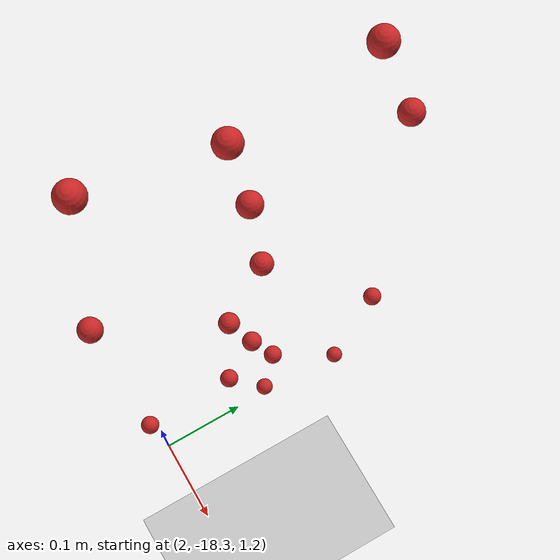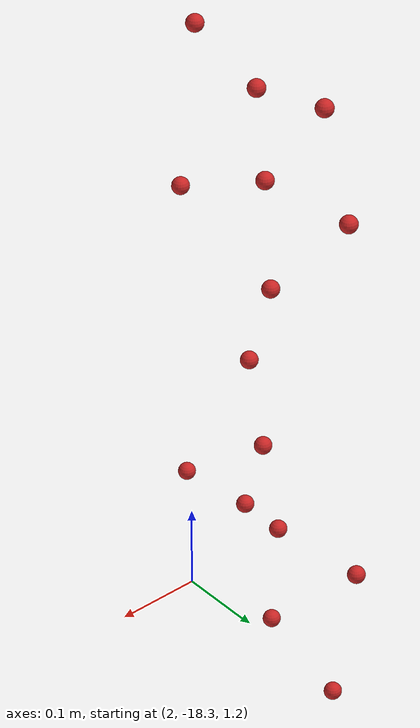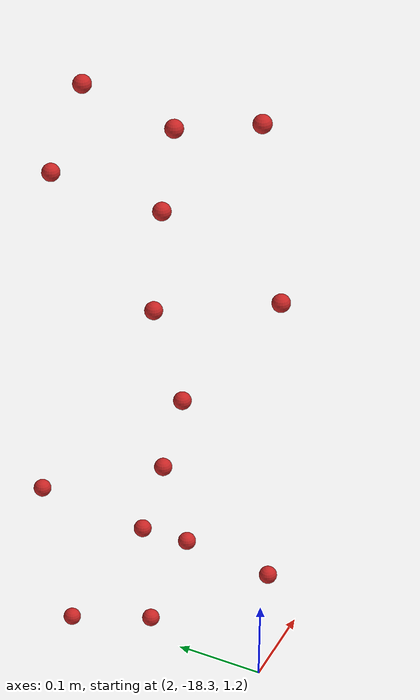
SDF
<sdf version="1.4">
 <world name="default">
  <model name="ground_plane">
   <static>1</static>
   <link name="link">
    <collision name="collision">
     <geometry><plane><normal>0 0 1</normal><size>100 100</size></plane></geometry>
     <surface><friction><ode><mu>100</mu><mu2>50</mu2></ode></friction></surface>
    </collision>
    <visual name="visual">
     <cast_shadows>0</cast_shadows>
     <geometry><plane><normal>0 0 1</normal><size>100 100</size></plane></geometry>
     <material>
      <script><uri>file://media/materials/scripts/gazebo.material</uri><name>Gazebo/Grey</name></script>
     </material>
    </visual>
    <velocity_decay><linear>0</linear><angular>0</angular></velocity_decay>
   </link>
  </model>
  <model name="apple845">
   <link name="my_apple">
    <inertial>
     <pose>2 0 0 0 -0 0</pose>
     <mass>1</mass>
     <inertia><ixx>1</ixx><ixy>0</ixy><ixz>0</ixz><iyy>1</iyy><iyz>0</iyz><izz>1</izz></inertia>
    </inertial>
    <collision name="my_apple_collision">
     <pose>2 0 1 0 -0 0</pose>
     <geometry><sphere><radius>0.01</radius></sphere></geometry>
    </collision>
    <visual name="my_apple_visual">
     <pose>2 0 1 0 -0 0</pose>
     <geometry><sphere><radius>0.01</radius></sphere></geometry>
     <material><script><name>Gazebo/Red</name><uri>__default__</uri></script></material>
    </visual>
    <gravity>0</gravity>
    <velocity_decay><linear>0</linear><angular>0</angular></velocity_decay>
   </link>
   <pose>0 -18.3145 0.728565 0 -0 0</pose>
   <static>0</static>
  </model>
  <model name="apple846">
   <link name="my_apple">
    <inertial>
     <pose>2 0 0 0 -0 0</pose>
     <mass>1</mass>
     <inertia><ixx>1</ixx><ixy>0</ixy><ixz>0</ixz><iyy>1</iyy><iyz>0</iyz><izz>1</izz></inertia>
    </inertial>
    <collision name="my_apple_collision">
     <pose>2 0 1 0 -0 0</pose>
     <geometry><sphere><radius>0.01</radius></sphere></geometry>
    </collision>
    <visual name="my_apple_visual">
     <pose>2 0 1 0 -0 0</pose>
     <geometry><sphere><radius>0.01</radius></sphere></geometry>
     <material><script><name>Gazebo/Red</name><uri>__default__</uri></script></material>
    </visual>
    <gravity>0</gravity>
    <velocity_decay><linear>0</linear><angular>0</angular></velocity_decay>
   </link>
   <pose>0 -18.3081 0.352792 0 -0 0</pose>
   <static>0</static>
  </model>
  <model name="apple847">
   <link name="my_apple">
    <inertial>
     <pose>2 0 0 0 -0 0</pose>
     <mass>1</mass>
     <inertia><ixx>1</ixx><ixy>0</ixy><ixz>0</ixz><iyy>1</iyy><iyz>0</iyz><izz>1</izz></inertia>
    </inertial>
    <collision name="my_apple_collision">
     <pose>2 0 1 0 -0 0</pose>
     <geometry><sphere><radius>0.01</radius></sphere></geometry>
    </collision>
    <visual name="my_apple_visual">
     <pose>2 0 1 0 -0 0</pose>
     <geometry><sphere><radius>0.01</radius></sphere></geometry>
     <material><script><name>Gazebo/Red</name><uri>__default__</uri></script></material>
    </visual>
    <gravity>0</gravity>
    <velocity_decay><linear>0</linear><angular>0</angular></velocity_decay>
   </link>
   <pose>0 -18.202 0.561909 0 -0 0</pose>
   <static>0</static>
  </model>
  <model name="apple848">
   <link name="my_apple">
    <inertial>
     <pose>2 0 0 0 -0 0</pose>
     <mass>1</mass>
     <inertia><ixx>1</ixx><ixy>0</ixy><ixz>0</ixz><iyy>1</iyy><iyz>0</iyz><izz>1</izz></inertia>
    </inertial>
    <collision name="my_apple_collision">
     <pose>2 0 1 0 -0 0</pose>
     <geometry><sphere><radius>0.01</radius></sphere></geometry>
    </collision>
    <visual name="my_apple_visual">
     <pose>2 0 1 0 -0 0</pose>
     <geometry><sphere><radius>0.01</radius></sphere></geometry>
     <material><script><name>Gazebo/Red</name><uri>__default__</uri></script></material>
    </visual>
    <gravity>0</gravity>
    <velocity_decay><linear>0</linear><angular>0</angular></velocity_decay>
   </link>
   <pose>0 -18.1628 0.230719 0 -0 0</pose>
   <static>0</static>
  </model>
  <model name="apple849">
   <link name="my_apple">
    <inertial>
     <pose>2 0 0 0 -0 0</pose>
     <mass>1</mass>
     <inertia><ixx>1</ixx><ixy>0</ixy><ixz>0</ixz><iyy>1</iyy><iyz>0</iyz><izz>1</izz></inertia>
    </inertial>
    <collision name="my_apple_collision">
     <pose>2 0 1 0 -0 0</pose>
     <geometry><sphere><radius>0.01</radius></sphere></geometry>
    </collision>
    <visual name="my_apple_visual">
     <pose>2 0 1 0 -0 0</pose>
     <geometry><sphere><radius>0.01</radius></sphere></geometry>
     <material><script><name>Gazebo/Red</name><uri>__default__</uri></script></material>
    </visual>
    <gravity>0</gravity>
    <velocity_decay><linear>0</linear><angular>0</angular></velocity_decay>
   </link>
   <pose>0 -18.1788 0.461066 0 -0 0</pose>
   <static>0</static>
  </model>
  <model name="apple851">
   <link name="my_apple">
    <inertial>
     <pose>2 0 0 0 -0 0</pose>
     <mass>1</mass>
     <inertia><ixx>1</ixx><ixy>0</ixy><ixz>0</ixz><iyy>1</iyy><iyz>0</iyz><izz>1</izz></inertia>
    </inertial>
    <collision name="my_apple_collision">
     <pose>2 0 1 0 -0 0</pose>
     <geometry><sphere><radius>0.01</radius></sphere></geometry>
    </collision>
    <visual name="my_apple_visual">
     <pose>2 0 1 0 -0 0</pose>
     <geometry><sphere><radius>0.01</radius></sphere></geometry>
     <material><script><name>Gazebo/Red</name><uri>__default__</uri></script></material>
    </visual>
    <gravity>0</gravity>
    <velocity_decay><linear>0</linear><angular>0</angular></velocity_decay>
   </link>
   <pose>0 -18.0876 0.93166 0 -0 0</pose>
   <static>0</static>
  </model>
  <model name="apple856">
   <link name="my_apple">
    <inertial>
     <pose>2 0 0 0 -0 0</pose>
     <mass>1</mass>
     <inertia><ixx>1</ixx><ixy>0</ixy><ixz>0</ixz><iyy>1</iyy><iyz>0</iyz><izz>1</izz></inertia>
    </inertial>
    <collision name="my_apple_collision">
     <pose>2 0 1 0 -0 0</pose>
     <geometry><sphere><radius>0.01</radius></sphere></geometry>
    </collision>
    <visual name="my_apple_visual">
     <pose>2 0 1 0 -0 0</pose>
     <geometry><sphere><radius>0.01</radius></sphere></geometry>
     <material><script><name>Gazebo/Red</name><uri>__default__</uri></script></material>
    </visual>
    <gravity>0</gravity>
    <velocity_decay><linear>0</linear><angular>0</angular></velocity_decay>
   </link>
   <pose>0 -18.1777 0.801809 0 -0 0</pose>
   <static>0</static>
  </model>
  <model name="apple861">
   <link name="my_apple">
    <inertial>
     <pose>2 0 0 0 -0 0</pose>
     <mass>1</mass>
     <inertia><ixx>1</ixx><ixy>0</ixy><ixz>0</ixz><iyy>1</iyy><iyz>0</iyz><izz>1</izz></inertia>
    </inertial>
    <collision name="my_apple_collision">
     <pose>2 0 1 0 -0 0</pose>
     <geometry><sphere><radius>0.01</radius></sphere></geometry>
    </collision>
    <visual name="my_apple_visual">
     <pose>2 0 1 0 -0 0</pose>
     <geometry><sphere><radius>0.01</radius></sphere></geometry>
     <material><script><name>Gazebo/Red</name><uri>__default__</uri></script></material>
    </visual>
    <gravity>0</gravity>
    <velocity_decay><linear>0</linear><angular>0</angular></velocity_decay>
   </link>
   <pose>0 -18.2889 0.940255 0 -0 0</pose>
   <static>0</static>
  </model>
  <model name="apple862">
   <link name="my_apple">
    <inertial>
     <pose>2 0 0 0 -0 0</pose>
     <mass>1</mass>
     <inertia><ixx>1</ixx><ixy>0</ixy><ixz>0</ixz><iyy>1</iyy><iyz>0</iyz><izz>1</izz></inertia>
    </inertial>
    <collision name="my_apple_collision">
     <pose>2 0 1 0 -0 0</pose>
     <geometry><sphere><radius>0.01</radius></sphere></geometry>
    </collision>
    <visual name="my_apple_visual">
     <pose>2 0 1 0 -0 0</pose>
     <geometry><sphere><radius>0.01</radius></sphere></geometry>
     <material><script><name>Gazebo/Red</name><uri>__default__</uri></script></material>
    </visual>
    <gravity>0</gravity>
    <velocity_decay><linear>0</linear><angular>0</angular></velocity_decay>
   </link>
   <pose>0 -18.153 0.362346 0 -0 0</pose>
   <static>0</static>
  </model>
  <model name="apple863">
   <link name="my_apple">
    <inertial>
     <pose>2 0 0 0 -0 0</pose>
     <mass>1</mass>
     <inertia><ixx>1</ixx><ixy>0</ixy><ixz>0</ixz><iyy>1</iyy><iyz>0</iyz><izz>1</izz></inertia>
    </inertial>
    <collision name="my_apple_collision">
     <pose>2 0 1 0 -0 0</pose>
     <geometry><sphere><radius>0.01</radius></sphere></geometry>
    </collision>
    <visual name="my_apple_visual">
     <pose>2 0 1 0 -0 0</pose>
     <geometry><sphere><radius>0.01</radius></sphere></geometry>
     <material><script><name>Gazebo/Red</name><uri>__default__</uri></script></material>
    </visual>
    <gravity>0</gravity>
    <velocity_decay><linear>0</linear><angular>0</angular></velocity_decay>
   </link>
   <pose>0 -18.2083 0.364469 0 -0 0</pose>
   <static>0</static>
  </model>
  <model name="apple865">
   <link name="my_apple">
    <inertial>
     <pose>2 0 0 0 -0 0</pose>
     <mass>1</mass>
     <inertia><ixx>1</ixx><ixy>0</ixy><ixz>0</ixz><iyy>1</iyy><iyz>0</iyz><izz>1</izz></inertia>
    </inertial>
    <collision name="my_apple_collision">
     <pose>2 0 1 0 -0 0</pose>
     <geometry><sphere><radius>0.01</radius></sphere></geometry>
    </collision>
    <visual name="my_apple_visual">
     <pose>2 0 1 0 -0 0</pose>
     <geometry><sphere><radius>0.01</radius></sphere></geometry>
     <material><script><name>Gazebo/Red</name><uri>__default__</uri></script></material>
    </visual>
    <gravity>0</gravity>
    <velocity_decay><linear>0</linear><angular>0</angular></velocity_decay>
   </link>
   <pose>0 -18.1916 0.907006 0 -0 0</pose>
   <static>0</static>
  </model>
  <model name="apple866">
   <link name="my_apple">
    <inertial>
     <pose>2 0 0 0 -0 0</pose>
     <mass>1</mass>
     <inertia><ixx>1</ixx><ixy>0</ixy><ixz>0</ixz><iyy>1</iyy><iyz>0</iyz><izz>1</izz></inertia>
    </inertial>
    <collision name="my_apple_collision">
     <pose>2 0 1 0 -0 0</pose>
     <geometry><sphere><radius>0.01</radius></sphere></geometry>
    </collision>
    <visual name="my_apple_visual">
     <pose>2 0 1 0 -0 0</pose>
     <geometry><sphere><radius>0.01</radius></sphere></geometry>
     <material><script><name>Gazebo/Red</name><uri>__default__</uri></script></material>
    </visual>
    <gravity>0</gravity>
    <velocity_decay><linear>0</linear><angular>0</angular></velocity_decay>
   </link>
   <pose>0 -18.0258 0.375085 0 -0 0</pose>
   <static>0</static>
  </model>
  <model name="apple867">
   <link name="my_apple">
    <inertial>
     <pose>2 0 0 0 -0 0</pose>
     <mass>1</mass>
     <inertia><ixx>1</ixx><ixy>0</ixy><ixz>0</ixz><iyy>1</iyy><iyz>0</iyz><izz>1</izz></inertia>
    </inertial>
    <collision name="my_apple_collision">
     <pose>2 0 1 0 -0 0</pose>
     <geometry><sphere><radius>0.01</radius></sphere></geometry>
    </collision>
    <visual name="my_apple_visual">
     <pose>2 0 1 0 -0 0</pose>
     <geometry><sphere><radius>0.01</radius></sphere></geometry>
     <material><script><name>Gazebo/Red</name><uri>__default__</uri></script></material>
    </visual>
    <gravity>0</gravity>
    <velocity_decay><linear>0</linear><angular>0</angular></velocity_decay>
   </link>
   <pose>0 -18.0598 0.191444 0 -0 0</pose>
   <static>0</static>
  </model>
  <model name="apple868">
   <link name="my_apple">
    <inertial>
     <pose>2 0 0 0 -0 0</pose>
     <mass>1</mass>
     <inertia><ixx>1</ixx><ixy>0</ixy><ixz>0</ixz><iyy>1</iyy><iyz>0</iyz><izz>1</izz></inertia>
    </inertial>
    <collision name="my_apple_collision">
     <pose>2 0 1 0 -0 0</pose>
     <geometry><sphere><radius>0.01</radius></sphere></geometry>
    </collision>
    <visual name="my_apple_visual">
     <pose>2 0 1 0 -0 0</pose>
     <geometry><sphere><radius>0.01</radius></sphere></geometry>
     <material><script><name>Gazebo/Red</name><uri>__default__</uri></script></material>
    </visual>
    <gravity>0</gravity>
    <velocity_decay><linear>0</linear><angular>0</angular></velocity_decay>
   </link>
   <pose>0 -18.0485 0.812402 0 -0 0</pose>
   <static>0</static>
  </model>
  <model name="apple869">
   <link name="my_apple">
    <inertial>
     <pose>2 0 0 0 -0 0</pose>
     <mass>1</mass>
     <inertia><ixx>1</ixx><ixy>0</ixy><ixz>0</ixz><iyy>1</iyy><iyz>0</iyz><izz>1</izz></inertia>
    </inertial>
    <collision name="my_apple_collision">
     <pose>2 0 1 0 -0 0</pose>
     <geometry><sphere><radius>0.01</radius></sphere></geometry>
    </collision>
    <visual name="my_apple_visual">
     <pose>2 0 1 0 -0 0</pose>
     <geometry><sphere><radius>0.01</radius></sphere></geometry>
     <material><script><name>Gazebo/Red</name><uri>__default__</uri></script></material>
    </visual>
    <gravity>0</gravity>
    <velocity_decay><linear>0</linear><angular>0</angular></velocity_decay>
   </link>
   <pose>0 -18.1678 0.671498 0 -0 0</pose>
   <static>0</static>
  </model>
 </world>
</sdf>
